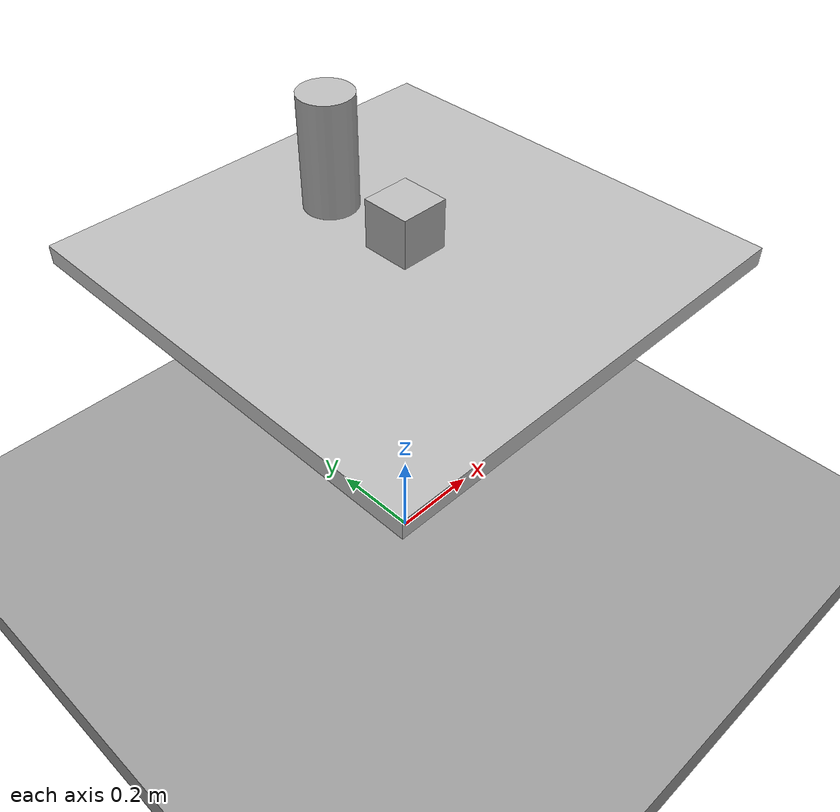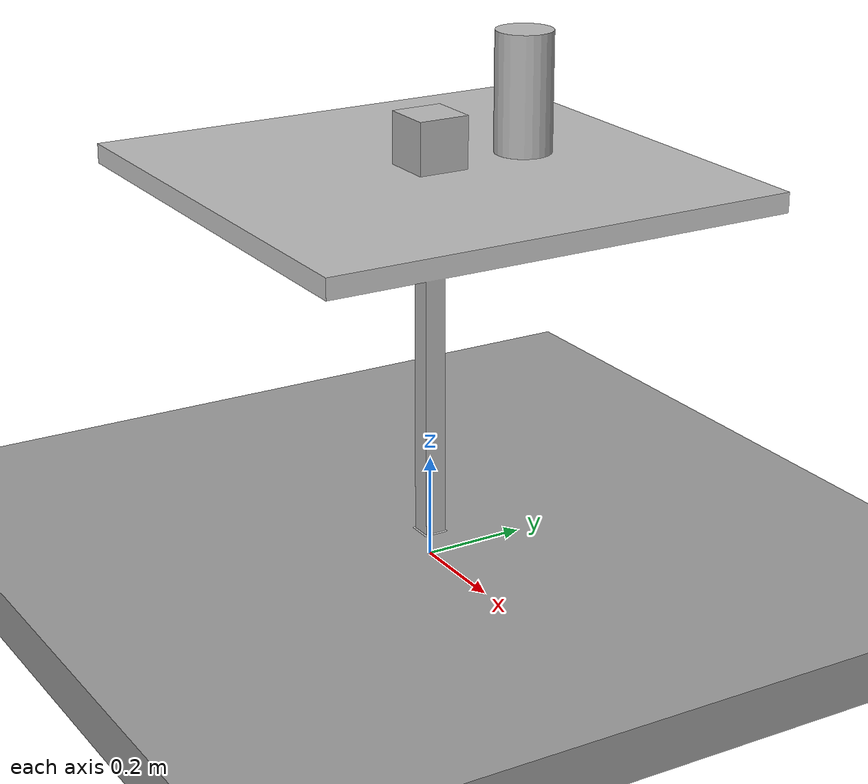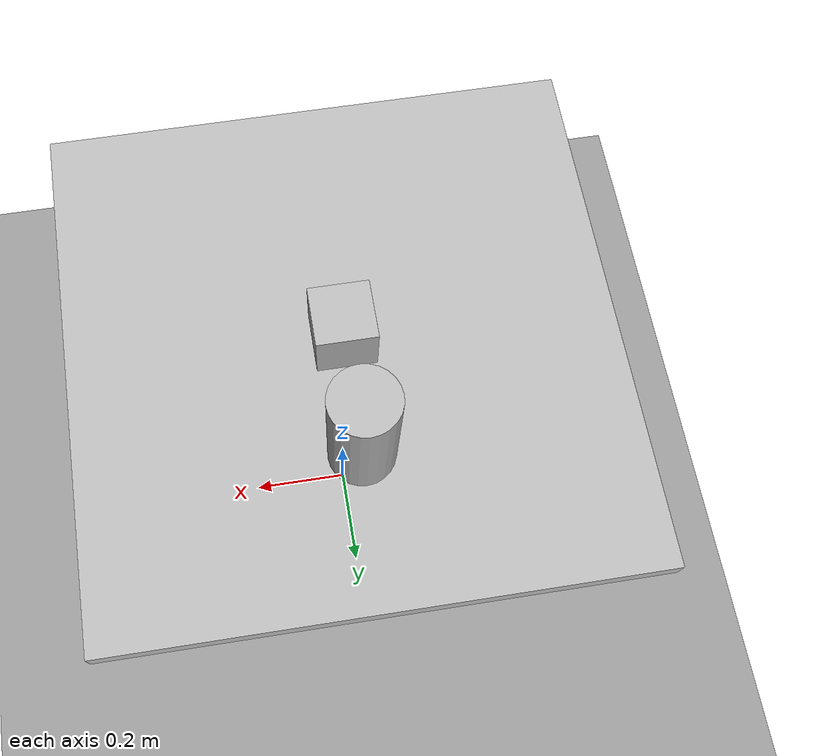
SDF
<sdf version="1.7">
 <world name="default">
  <light name="sun" type="directional">
   <pose>0 0 10 0 -0 0</pose>
   <diffuse>0.8 0.8 0.8 1</diffuse>
   <specular>0.2 0.2 0.2 1</specular>
   <attenuation>
    <range>1000</range>
    <constant>0.9</constant>
    <linear>0.01</linear>
    <quadratic>0.001</quadratic>
   </attenuation>
   <direction>-0.5 0.1 -0.9</direction>
   <spot><inner_angle>0</inner_angle><outer_angle>0</outer_angle><falloff>0</falloff></spot>
  </light>
  <model name="ground_plane">
   <static>1</static>
   <link name="link">
    <collision name="collision">
     <geometry><plane><normal>0 0 1</normal><size>100 100</size></plane></geometry>
     <surface><friction><ode><mu>100</mu><mu2>50</mu2></ode></friction></surface>
    </collision>
    <visual name="visual">
     <cast_shadows>0</cast_shadows>
     <geometry><plane><normal>0 0 1</normal><size>100 100</size></plane></geometry>
     <material>
      <script><uri>file://media/materials/scripts/gazebo.material</uri><name>Gazebo/Grey</name></script>
     </material>
    </visual>
   </link>
  </model>
  <gravity>0 0 -9.8</gravity>
  <magnetic_field>6e-06 2.3e-05 -4.2e-05</magnetic_field>
  <atmosphere type="adiabatic"/>
  <physics type="ode">
   <max_step_size>0.001</max_step_size>
   <real_time_factor>1</real_time_factor>
   <real_time_update_rate>1000</real_time_update_rate>
  </physics>
  <scene><ambient>0.4 0.4 0.4 1</ambient><background>0.7 0.7 0.7 1</background><shadows>1</shadows></scene>
  <audio><device>default</device></audio>
  <spherical_coordinates>
   <surface_model>EARTH_WGS84</surface_model>
   <latitude_deg>0</latitude_deg>
   <longitude_deg>0</longitude_deg>
   <elevation>0</elevation>
   <heading_deg>0</heading_deg>
  </spherical_coordinates>
  <model name="ground_plane_0">
   <static>1</static>
   <link name="link">
    <collision name="collision">
     <geometry><plane><normal>0 0 1</normal><size>100 100</size></plane></geometry>
     <surface><friction><ode><mu>100</mu><mu2>50</mu2></ode></friction></surface>
    </collision>
    <visual name="visual">
     <cast_shadows>0</cast_shadows>
     <geometry><plane><normal>0 0 1</normal><size>100 100</size></plane></geometry>
     <material>
      <script><uri>file://media/materials/scripts/gazebo.material</uri><name>Gazebo/Grey</name></script>
     </material>
    </visual>
   </link>
   <pose>-0.418686 -0.448216 0 0 -0 0</pose>
  </model>
  <model name="cafe_table">
   <static>1</static>
   <link name="link">
    <collision name="surface">
     <pose>0 0 0.755 0 -0 0</pose>
     <geometry><box><size>0.913 0.913 0.04</size></box></geometry>
    </collision>
    <collision name="column">
     <pose>0 0 0.37 0 -0 0</pose>
     <geometry><box><size>0.042 0.042 0.74</size></box></geometry>
    </collision>
    <collision name="base">
     <pose>0 0 0.02 0 -0 0</pose>
     <geometry><box><size>0.56 0.56 0.04</size></box></geometry>
    </collision>
    <visual name="visual">
     <geometry><mesh><uri>model://cafe_table/meshes/cafe_table.dae</uri></mesh></geometry>
    </visual>
   </link>
  </model>
  <model name="beer">
   <link name="link">
    <pose>0 0 0.115 0 -0 0</pose>
    <inertial>
     <mass>0.39</mass>
     <inertia><ixx>0.00058</ixx><ixy>0</ixy><ixz>0</ixz><iyy>0.00058</iyy><iyz>0</iyz><izz>0.00019</izz></inertia>
    </inertial>
    <collision name="collision">
     <geometry><cylinder><radius>0.055</radius><length>0.23</length></cylinder></geometry>
    </collision>
    <visual name="visual">
     <geometry><cylinder><radius>0.055</radius><length>0.23</length></cylinder></geometry>
     <material>
      <script>
       <uri>model://beer/materials/scripts</uri>
       <uri>model://beer/materials/textures</uri>
       <name>Beer/Diffuse</name>
      </script>
     </material>
    </visual>
   </link>
   <pose>-2e-06 0.200025 0.774992 -1e-06 2.7e-05 0.000892</pose>
  </model>
  <model name="camera">
   <pose>-7e-06 -5e-06 0.825 0 0 -0.000109</pose>
   <link name="link">
    <inertial>
     <mass>0.1</mass>
     <inertia>
      <ixx>0.000166667</ixx>
      <iyy>0.000166667</iyy>
      <izz>0.000166667</izz>
      <ixy>0</ixy>
      <ixz>0</ixz>
      <iyz>0</iyz>
     </inertia>
    </inertial>
    <collision name="collision"><geometry><box><size>0.1 0.1 0.1</size></box></geometry></collision>
    <visual name="visual"><geometry><box><size>0.1 0.1 0.1</size></box></geometry></visual>
    <sensor name="camera" type="camera">
     <camera>
      <horizontal_fov>1.047</horizontal_fov>
      <image><width>320</width><height>240</height></image>
      <clip><near>0.1</near><far>100</far></clip>
     </camera>
     <always_on>1</always_on>
     <update_rate>30</update_rate>
     <visualize>1</visualize>
    </sensor>
   </link>
  </model>
 </world>
</sdf>
